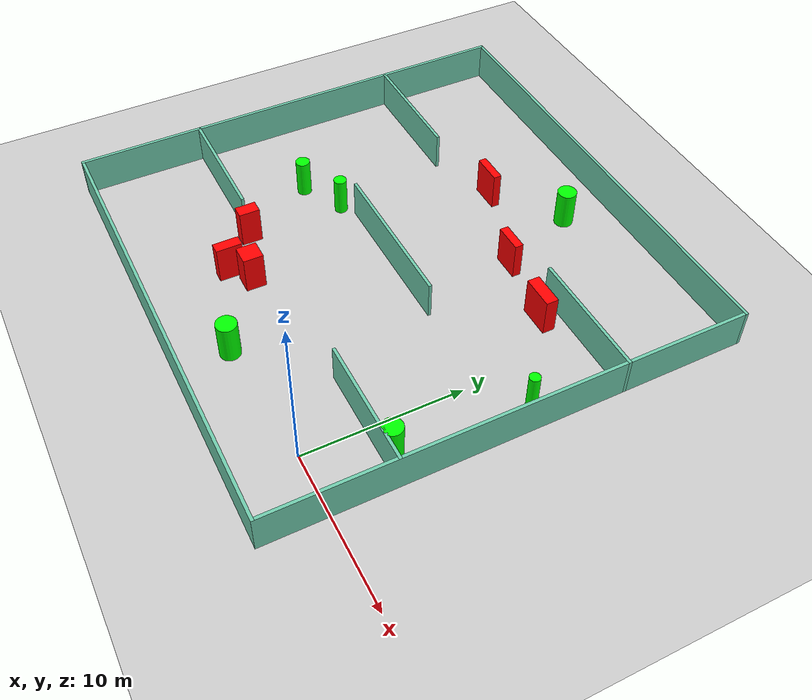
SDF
<sdf version="1.7">
 <world name="default">
  <light name="sun" type="directional">
   <pose>0 0 10 0 -0 0</pose>
   <diffuse>0.8 0.8 0.8 1</diffuse>
   <specular>0.2 0.2 0.2 1</specular>
   <attenuation>
    <range>1000</range>
    <constant>0.9</constant>
    <linear>0.01</linear>
    <quadratic>0.001</quadratic>
   </attenuation>
   <direction>-0.5 0.1 -0.9</direction>
   <spot><inner_angle>0</inner_angle><outer_angle>0</outer_angle><falloff>0</falloff></spot>
  </light>
  <model name="ground_plane">
   <static>1</static>
   <link name="link">
    <collision name="collision">
     <geometry><plane><normal>0 0 1</normal><size>100 100</size></plane></geometry>
     <surface>
      <contact><collide_bitmask>65535</collide_bitmask></contact>
      <friction><ode><mu>100</mu><mu2>50</mu2></ode></friction>
     </surface>
    </collision>
    <visual name="visual">
     <cast_shadows>0</cast_shadows>
     <geometry><plane><normal>0 0 1</normal><size>100 100</size></plane></geometry>
     <material>
      <script><uri>file://media/materials/scripts/gazebo.material</uri><name>Gazebo/Grey</name></script>
     </material>
    </visual>
   </link>
  </model>
  <gravity>0 0 -9.8</gravity>
  <magnetic_field>6e-06 2.3e-05 -4.2e-05</magnetic_field>
  <atmosphere type="adiabatic"/>
  <physics type="ode">
   <max_step_size>0.001</max_step_size>
   <real_time_factor>1</real_time_factor>
   <real_time_update_rate>1000</real_time_update_rate>
  </physics>
  <scene><ambient>0.4 0.4 0.4 1</ambient><background>0.7 0.7 0.7 1</background><shadows>1</shadows></scene>
  <spherical_coordinates>
   <surface_model>EARTH_WGS84</surface_model>
   <latitude_deg>0</latitude_deg>
   <longitude_deg>0</longitude_deg>
   <elevation>0</elevation>
   <heading_deg>0</heading_deg>
  </spherical_coordinates>
  <model name="my_base_walls">
   <link name="Wall_10">
    <collision name="Wall_10_Collision">
     <geometry><box><size>8.2 0.2 2.5</size></box></geometry>
     <pose>0 0 1.25 0 -0 0</pose>
    </collision>
    <visual name="Wall_10_Visual">
     <pose>0 0 1.25 0 -0 0</pose>
     <geometry><box><size>8.2 0.2 2.5</size></box></geometry>
     <material>
      <script><uri>file://media/materials/scripts/gazebo.material</uri><name>Gazebo/Grey</name></script>
      <ambient>0.435294 0.796078 0.67451 1</ambient>
     </material>
     <meta><layer>0</layer></meta>
    </visual>
    <pose>-11 -7 0 0 -0 0</pose>
   </link>
   <link name="Wall_12">
    <collision name="Wall_12_Collision">
     <geometry><box><size>8.2 0.2 2.5</size></box></geometry>
     <pose>0 0 1.25 0 -0 0</pose>
    </collision>
    <visual name="Wall_12_Visual">
     <pose>0 0 1.25 0 -0 0</pose>
     <geometry><box><size>8.2 0.2 2.5</size></box></geometry>
     <material>
      <script><uri>file://media/materials/scripts/gazebo.material</uri><name>Gazebo/Grey</name></script>
      <ambient>0.435294 0.796078 0.67451 1</ambient>
     </material>
     <meta><layer>0</layer></meta>
    </visual>
    <pose>-11 7 0 0 -0 0</pose>
   </link>
   <link name="Wall_14">
    <collision name="Wall_14_Collision">
     <geometry><box><size>8.2 0.2 2.5</size></box></geometry>
     <pose>0 0 1.25 0 -0 0</pose>
    </collision>
    <visual name="Wall_14_Visual">
     <pose>0 0 1.25 0 -0 0</pose>
     <geometry><box><size>8.2 0.2 2.5</size></box></geometry>
     <material>
      <script><uri>file://media/materials/scripts/gazebo.material</uri><name>Gazebo/Grey</name></script>
      <ambient>0.435294 0.796078 0.67451 1</ambient>
     </material>
     <meta><layer>0</layer></meta>
    </visual>
    <pose>11 7 0 0 -0 3.14159</pose>
   </link>
   <link name="Wall_16">
    <collision name="Wall_16_Collision">
     <geometry><box><size>10.2 0.2 2.5</size></box></geometry>
     <pose>0 0 1.25 0 -0 0</pose>
    </collision>
    <visual name="Wall_16_Visual">
     <pose>0 0 1.25 0 -0 0</pose>
     <geometry><box><size>10.2 0.2 2.5</size></box></geometry>
     <material>
      <script><uri>file://media/materials/scripts/gazebo.material</uri><name>Gazebo/Grey</name></script>
      <ambient>0.435294 0.796078 0.67451 1</ambient>
     </material>
     <meta><layer>0</layer></meta>
    </visual>
    <pose>0 0 0 0 -0 3.14159</pose>
   </link>
   <link name="Wall_2">
    <collision name="Wall_2_Collision">
     <geometry><box><size>30.2 0.2 2.5</size></box></geometry>
     <pose>0 0 1.25 0 -0 0</pose>
    </collision>
    <visual name="Wall_2_Visual">
     <pose>0 0 1.25 0 -0 0</pose>
     <geometry><box><size>30.2 0.2 2.5</size></box></geometry>
     <material>
      <script><uri>file://media/materials/scripts/gazebo.material</uri><name>Gazebo/Grey</name></script>
      <ambient>0.435294 0.796078 0.67451 1</ambient>
     </material>
     <meta><layer>0</layer></meta>
    </visual>
    <pose>0 -15 0 0 -0 3.14159</pose>
   </link>
   <link name="Wall_3">
    <collision name="Wall_3_Collision">
     <geometry><box><size>30.2 0.2 2.5</size></box></geometry>
     <pose>0 0 1.25 0 -0 0</pose>
    </collision>
    <visual name="Wall_3_Visual">
     <pose>0 0 1.25 0 -0 0</pose>
     <geometry><box><size>30.2 0.2 2.5</size></box></geometry>
     <material>
      <script><uri>file://media/materials/scripts/gazebo.material</uri><name>Gazebo/Grey</name></script>
      <ambient>0.435294 0.796078 0.67451 1</ambient>
     </material>
     <meta><layer>0</layer></meta>
    </visual>
    <pose>-15 0 0 0 -0 1.5708</pose>
   </link>
   <link name="Wall_4">
    <collision name="Wall_4_Collision">
     <geometry><box><size>30.2 0.2 2.5</size></box></geometry>
     <pose>0 0 1.25 0 -0 0</pose>
    </collision>
    <visual name="Wall_4_Visual">
     <pose>0 0 1.25 0 -0 0</pose>
     <geometry><box><size>30.2 0.2 2.5</size></box></geometry>
     <material>
      <script><uri>file://media/materials/scripts/gazebo.material</uri><name>Gazebo/Grey</name></script>
      <ambient>0.435294 0.796078 0.67451 1</ambient>
     </material>
     <meta><layer>0</layer></meta>
    </visual>
    <pose>0 15 0 0 -0 0</pose>
   </link>
   <link name="Wall_6">
    <collision name="Wall_6_Collision">
     <geometry><box><size>30.2 0.2 2.5</size></box></geometry>
     <pose>0 0 1.25 0 -0 0</pose>
    </collision>
    <visual name="Wall_6_Visual">
     <pose>0 0 1.25 0 -0 0</pose>
     <geometry><box><size>30.2 0.2 2.5</size></box></geometry>
     <material>
      <script><uri>file://media/materials/scripts/gazebo.material</uri><name>Gazebo/Grey</name></script>
      <ambient>0.435294 0.796078 0.67451 1</ambient>
     </material>
     <meta><layer>0</layer></meta>
    </visual>
    <pose>15 0 0 0 -0 1.5708</pose>
   </link>
   <link name="Wall_8">
    <collision name="Wall_8_Collision">
     <geometry><box><size>8.2 0.2 2.5</size></box></geometry>
     <pose>0 0 1.25 0 -0 0</pose>
    </collision>
    <visual name="Wall_8_Visual">
     <pose>0 0 1.25 0 -0 0</pose>
     <geometry><box><size>8.2 0.2 2.5</size></box></geometry>
     <material>
      <script><uri>file://media/materials/scripts/gazebo.material</uri><name>Gazebo/Grey</name></script>
      <ambient>0.435294 0.796078 0.67451 1</ambient>
     </material>
     <meta><layer>0</layer></meta>
    </visual>
    <pose>11 -7 0 0 -0 3.14159</pose>
   </link>
   <static>1</static>
   <pose>-11 11 0 0 -0 0</pose>
  </model>
  <model name="cylinder1">
   <static>1</static>
   <link name="link">
    <inertial>
     <mass>1</mass>
     <inertia><ixx>0.5</ixx><ixy>0</ixy><ixz>0</ixz><iyy>0.5</iyy><iyz>0</iyz><izz>1</izz></inertia>
    </inertial>
    <collision name="collision">
     <geometry><cylinder><radius>0.6136634188455563</radius><length>2.5</length></cylinder></geometry>
    </collision>
    <visual name="visual">
     <geometry><cylinder><radius>0.6136634188455563</radius><length>2.5</length></cylinder></geometry>
     <material>
      <ambient>0 1 0 1</ambient>
      <diffuse>0 1 0 1</diffuse>
      <specular>0.1 0.1 0.1 1</specular>
      <emissive>0 0 0 0</emissive>
     </material>
    </visual>
   </link>
   <pose>-9.346955099708467 22.68462206915067 1.25 0 0 0</pose>
  </model>
  <model name="cylinder2">
   <static>1</static>
   <link name="link">
    <inertial>
     <mass>1</mass>
     <inertia><ixx>0.5</ixx><ixy>0</ixy><ixz>0</ixz><iyy>0.5</iyy><iyz>0</iyz><izz>1</izz></inertia>
    </inertial>
    <collision name="collision">
     <geometry><cylinder><radius>0.4178099492475978</radius><length>2.5</length></cylinder></geometry>
    </collision>
    <visual name="visual">
     <geometry><cylinder><radius>0.4178099492475978</radius><length>2.5</length></cylinder></geometry>
     <material>
      <ambient>0 1 0 1</ambient>
      <diffuse>0 1 0 1</diffuse>
      <specular>0.1 0.1 0.1 1</specular>
      <emissive>0 0 0 0</emissive>
     </material>
    </visual>
   </link>
   <pose>-16.8764967501942 10.277014189741642 1.25 0 0 0</pose>
  </model>
  <model name="cylinder3">
   <static>1</static>
   <link name="link">
    <inertial>
     <mass>1</mass>
     <inertia><ixx>0.5</ixx><ixy>0</ixy><ixz>0</ixz><iyy>0.5</iyy><iyz>0</iyz><izz>1</izz></inertia>
    </inertial>
    <collision name="collision">
     <geometry><cylinder><radius>0.462827716512753</radius><length>2.5</length></cylinder></geometry>
    </collision>
    <visual name="visual">
     <geometry><cylinder><radius>0.462827716512753</radius><length>2.5</length></cylinder></geometry>
     <material>
      <ambient>0 1 0 1</ambient>
      <diffuse>0 1 0 1</diffuse>
      <specular>0.1 0.1 0.1 1</specular>
      <emissive>0 0 0 0</emissive>
     </material>
    </visual>
   </link>
   <pose>-19.641235656612285 8.860468687981198 1.25 0 0 0</pose>
  </model>
  <model name="cylinder4">
   <static>1</static>
   <link name="link">
    <inertial>
     <mass>1</mass>
     <inertia><ixx>0.5</ixx><ixy>0</ixy><ixz>0</ixz><iyy>0.5</iyy><iyz>0</iyz><izz>1</izz></inertia>
    </inertial>
    <collision name="collision">
     <geometry><cylinder><radius>0.6469014595793487</radius><length>2.5</length></cylinder></geometry>
    </collision>
    <visual name="visual">
     <geometry><cylinder><radius>0.6469014595793487</radius><length>2.5</length></cylinder></geometry>
     <material>
      <ambient>0 1 0 1</ambient>
      <diffuse>0 1 0 1</diffuse>
      <specular>0.1 0.1 0.1 1</specular>
      <emissive>0 0 0 0</emissive>
     </material>
    </visual>
   </link>
   <pose>-8.449686805587163 -0.6483905803035617 1.25 0 0 0</pose>
  </model>
  <model name="cylinder5">
   <static>1</static>
   <link name="link">
    <inertial>
     <mass>1</mass>
     <inertia><ixx>0.5</ixx><ixy>0</ixy><ixz>0</ixz><iyy>0.5</iyy><iyz>0</iyz><izz>1</izz></inertia>
    </inertial>
    <collision name="collision">
     <geometry><cylinder><radius>0.622543010380143</radius><length>2.5</length></cylinder></geometry>
    </collision>
    <visual name="visual">
     <geometry><cylinder><radius>0.622543010380143</radius><length>2.5</length></cylinder></geometry>
     <material>
      <ambient>0 1 0 1</ambient>
      <diffuse>0 1 0 1</diffuse>
      <specular>0.1 0.1 0.1 1</specular>
      <emissive>0 0 0 0</emissive>
     </material>
    </visual>
   </link>
   <pose>2.1090648835075 4.525838778695494 1.25 0 0 0</pose>
  </model>
  <model name="cylinder6">
   <static>1</static>
   <link name="link">
    <inertial>
     <mass>1</mass>
     <inertia><ixx>0.5</ixx><ixy>0</ixy><ixz>0</ixz><iyy>0.5</iyy><iyz>0</iyz><izz>1</izz></inertia>
    </inertial>
    <collision name="collision">
     <geometry><cylinder><radius>0.33935873619532014</radius><length>2.5</length></cylinder></geometry>
    </collision>
    <visual name="visual">
     <geometry><cylinder><radius>0.33935873619532014</radius><length>2.5</length></cylinder></geometry>
     <material>
      <ambient>0 1 0 1</ambient>
      <diffuse>0 1 0 1</diffuse>
      <specular>0.1 0.1 0.1 1</specular>
      <emissive>0 0 0 0</emissive>
     </material>
    </visual>
   </link>
   <pose>2.611487198177894 12.834140536874179 1.25 0 0 0</pose>
  </model>
  <model name="box1">
   <static>1</static>
   <link name="link">
    <inertial>
     <mass>1</mass>
     <inertia><ixx>0.083</ixx><ixy>0</ixy><ixz>0</ixz><iyy>0.083</iyy><iyz>0</iyz><izz>0.083</izz></inertia>
    </inertial>
    <collision name="collision">
     <geometry><box><size>1.2543545766591537 1.2757613781723338 2.5</size></box></geometry>
    </collision>
    <visual name="visual">
     <geometry><box><size>1.2543545766591537 1.2757613781723338 2.5</size></box></geometry>
     <material>
      <ambient>1 0 0 1</ambient>
      <diffuse>1 0 0 1</diffuse>
      <specular>0.1 0.1 0.1 1</specular>
      <emissive>0 0 0 0</emissive>
     </material>
    </visual>
    <sensor name="my_contact" type="contact">
     <contact><collision>box_collision</collision><topic>__default_topic__</topic></contact>
    </sensor>
   </link>
   <pose>-13.234665187742223 2.6370465121559095 1.25 0 0 0</pose>
  </model>
  <model name="box2">
   <static>1</static>
   <link name="link">
    <inertial>
     <mass>1</mass>
     <inertia><ixx>0.083</ixx><ixy>0</ixy><ixz>0</ixz><iyy>0.083</iyy><iyz>0</iyz><izz>0.083</izz></inertia>
    </inertial>
    <collision name="collision">
     <geometry><box><size>1.817292895122058 0.5491640872717416 2.5</size></box></geometry>
    </collision>
    <visual name="visual">
     <geometry><box><size>1.817292895122058 0.5491640872717416 2.5</size></box></geometry>
     <material>
      <ambient>1 0 0 1</ambient>
      <diffuse>1 0 0 1</diffuse>
      <specular>0.1 0.1 0.1 1</specular>
      <emissive>0 0 0 0</emissive>
     </material>
    </visual>
    <sensor name="my_contact" type="contact">
     <contact><collision>box_collision</collision><topic>__default_topic__</topic></contact>
    </sensor>
   </link>
   <pose>-7.342860209568606 17.3662264614918 1.25 0 0 0</pose>
  </model>
  <model name="box3">
   <static>1</static>
   <link name="link">
    <inertial>
     <mass>1</mass>
     <inertia><ixx>0.083</ixx><ixy>0</ixy><ixz>0</ixz><iyy>0.083</iyy><iyz>0</iyz><izz>0.083</izz></inertia>
    </inertial>
    <collision name="collision">
     <geometry><box><size>0.6979913172773129 1.6580663337641715 2.5</size></box></geometry>
    </collision>
    <visual name="visual">
     <geometry><box><size>0.6979913172773129 1.6580663337641715 2.5</size></box></geometry>
     <material>
      <ambient>1 0 0 1</ambient>
      <diffuse>1 0 0 1</diffuse>
      <specular>0.1 0.1 0.1 1</specular>
      <emissive>0 0 0 0</emissive>
     </material>
    </visual>
    <sensor name="my_contact" type="contact">
     <contact><collision>box_collision</collision><topic>__default_topic__</topic></contact>
    </sensor>
   </link>
   <pose>-14.491188442000038 1.6826033813281054 1.25 0 0 0</pose>
  </model>
  <model name="box4">
   <static>1</static>
   <link name="link">
    <inertial>
     <mass>1</mass>
     <inertia><ixx>0.083</ixx><ixy>0</ixy><ixz>0</ixz><iyy>0.083</iyy><iyz>0</iyz><izz>0.083</izz></inertia>
    </inertial>
    <collision name="collision">
     <geometry><box><size>0.8148050782926939 1.3237057090649766 2.5</size></box></geometry>
    </collision>
    <visual name="visual">
     <geometry><box><size>0.8148050782926939 1.3237057090649766 2.5</size></box></geometry>
     <material>
      <ambient>1 0 0 1</ambient>
      <diffuse>1 0 0 1</diffuse>
      <specular>0.1 0.1 0.1 1</specular>
      <emissive>0 0 0 0</emissive>
     </material>
    </visual>
    <sensor name="my_contact" type="contact">
     <contact><collision>box_collision</collision><topic>__default_topic__</topic></contact>
    </sensor>
   </link>
   <pose>-16.923126677621273 3.9203516958059534 1.25 0 0 0</pose>
  </model>
  <model name="box5">
   <static>1</static>
   <link name="link">
    <inertial>
     <mass>1</mass>
     <inertia><ixx>0.083</ixx><ixy>0</ixy><ixz>0</ixz><iyy>0.083</iyy><iyz>0</iyz><izz>0.083</izz></inertia>
    </inertial>
    <collision name="collision">
     <geometry><box><size>1.9717334653255734 0.5184561659738285 2.5</size></box></geometry>
    </collision>
    <visual name="visual">
     <geometry><box><size>1.9717334653255734 0.5184561659738285 2.5</size></box></geometry>
     <material>
      <ambient>1 0 0 1</ambient>
      <diffuse>1 0 0 1</diffuse>
      <specular>0.1 0.1 0.1 1</specular>
      <emissive>0 0 0 0</emissive>
     </material>
    </visual>
    <sensor name="my_contact" type="contact">
     <contact><collision>box_collision</collision><topic>__default_topic__</topic></contact>
    </sensor>
   </link>
   <pose>-13.57019445839384 19.47776999456704 1.25 0 0 0</pose>
  </model>
  <model name="box6">
   <static>1</static>
   <link name="link">
    <inertial>
     <mass>1</mass>
     <inertia><ixx>0.083</ixx><ixy>0</ixy><ixz>0</ixz><iyy>0.083</iyy><iyz>0</iyz><izz>0.083</izz></inertia>
    </inertial>
    <collision name="collision">
     <geometry><box><size>2.098420947286715 0.7869303655600348 2.5</size></box></geometry>
    </collision>
    <visual name="visual">
     <geometry><box><size>2.098420947286715 0.7869303655600348 2.5</size></box></geometry>
     <material>
      <ambient>1 0 0 1</ambient>
      <diffuse>1 0 0 1</diffuse>
      <specular>0.1 0.1 0.1 1</specular>
      <emissive>0 0 0 0</emissive>
     </material>
    </visual>
    <sensor name="my_contact" type="contact">
     <contact><collision>box_collision</collision><topic>__default_topic__</topic></contact>
    </sensor>
   </link>
   <pose>-2.6770719792706075 16.659233954921103 1.25 0 0 0</pose>
  </model>
 </world>
</sdf>
